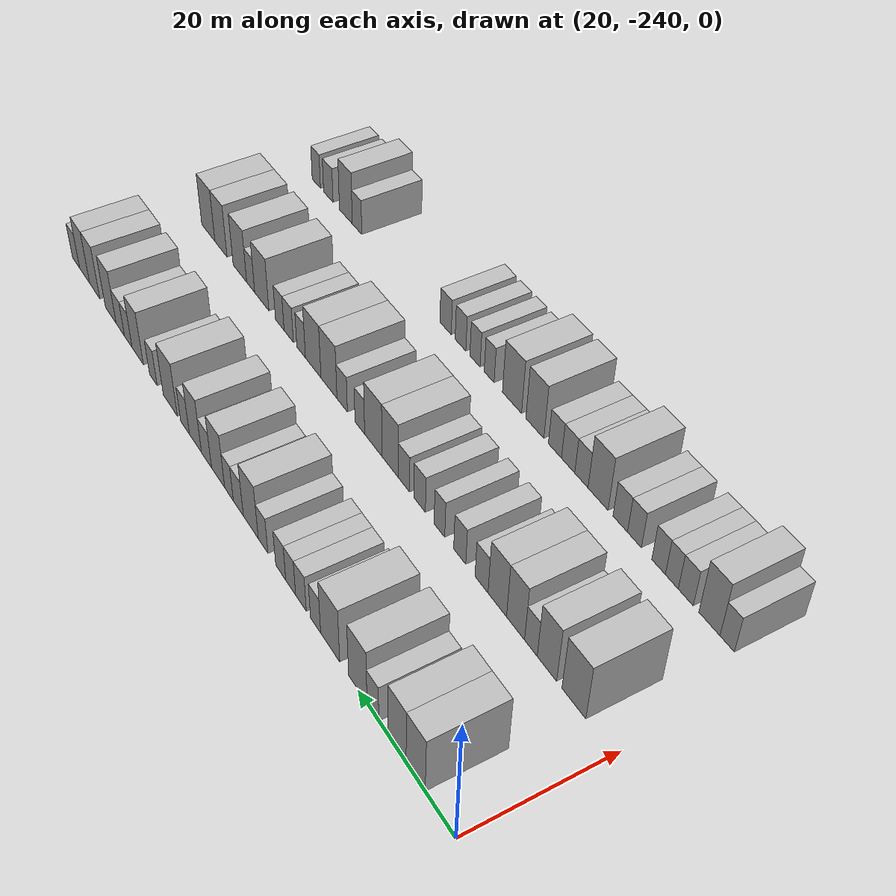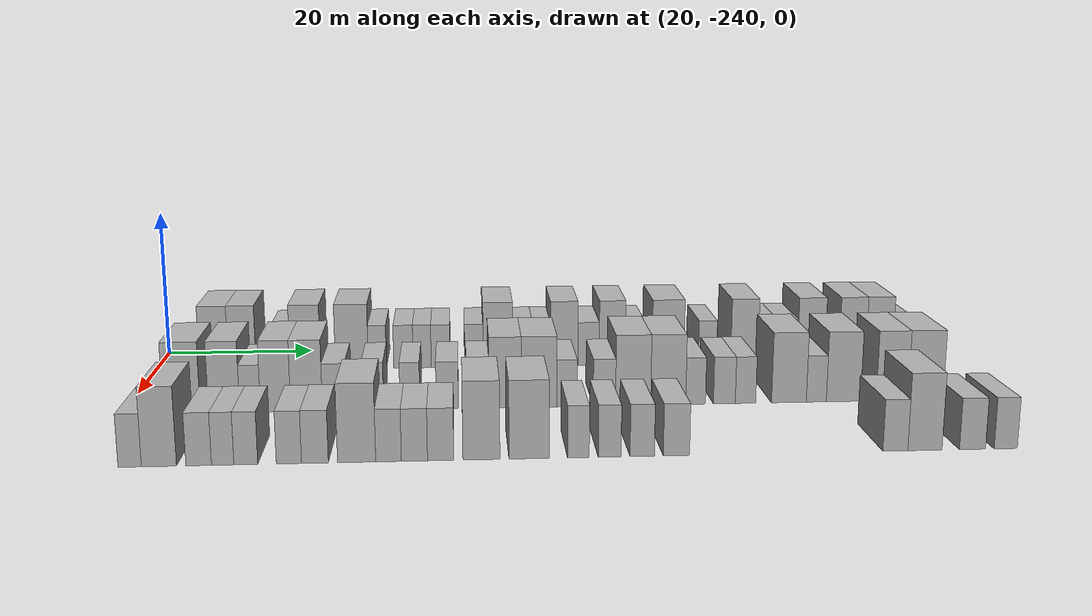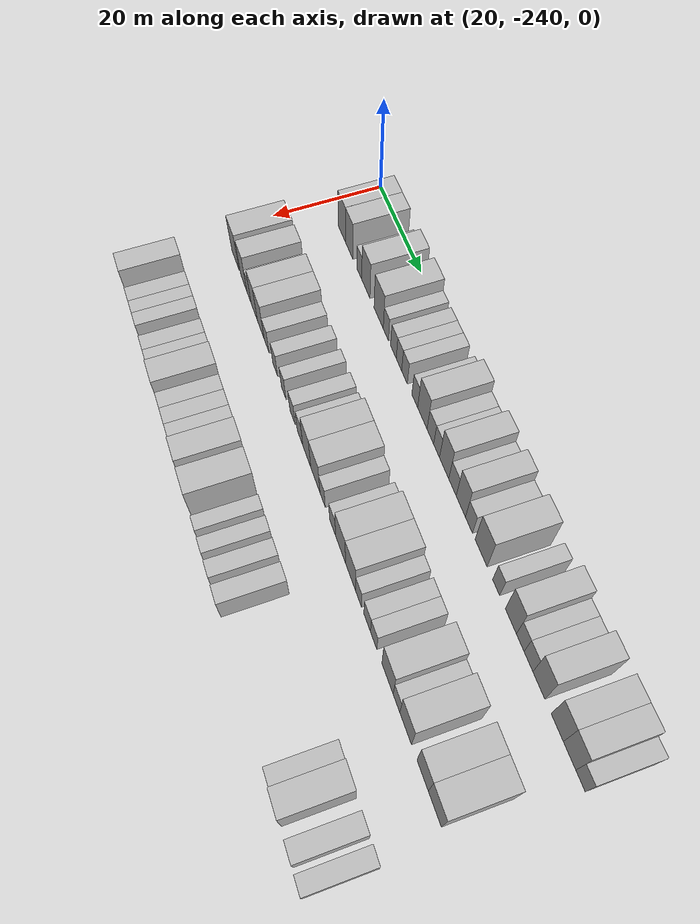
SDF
<sdf version="1.6">
 <world name="default">
  <model name="building_1">
   <static>1</static>
   <pose>25.0000 -232.0690 0 0.000000 0.000000 0.000000</pose>
   <link name="link">
    <pose>0 0 4.50 0 0 0</pose>
    <collision name="collision"><geometry><box><size>10.0000 3.8621 9.0000</size></box></geometry></collision>
    <visual name="visual">
     <cast_shadows>0</cast_shadows>
     <geometry><box><size>10.0000 3.8621 9.0000</size></box></geometry>
     <material>
      <script>
       <uri>model://HANNAS_wall/materials/scripts</uri>
       <uri>model://HANNAS_wall/materials/textures</uri>
       <name>vrc/HANNAS_wall</name>
      </script>
     </material>
    </visual>
   </link>
  </model>
  <model name="building_2">
   <static>1</static>
   <pose>25.0000 -228.2816 0 0.000000 0.000000 0.000000</pose>
   <link name="link">
    <pose>0 0 4.50 0 0 0</pose>
    <collision name="collision"><geometry><box><size>10.0000 3.7126 9.0000</size></box></geometry></collision>
    <visual name="visual">
     <cast_shadows>0</cast_shadows>
     <geometry><box><size>10.0000 3.7126 9.0000</size></box></geometry>
     <material>
      <script>
       <uri>model://HANNAS_wall/materials/scripts</uri>
       <uri>model://HANNAS_wall/materials/textures</uri>
       <name>vrc/HANNAS_wall</name>
      </script>
     </material>
    </visual>
   </link>
  </model>
  <model name="building_3">
   <static>1</static>
   <pose>25.0000 -223.1535 0 0.000000 0.000000 0.000000</pose>
   <link name="link">
    <pose>0 0 3.00 0 0 0</pose>
    <collision name="collision"><geometry><box><size>10.0000 2.5438 6.0000</size></box></geometry></collision>
    <visual name="visual">
     <cast_shadows>0</cast_shadows>
     <geometry><box><size>10.0000 2.5438 6.0000</size></box></geometry>
     <material>
      <script>
       <uri>model://HANNAS_wall/materials/scripts</uri>
       <uri>model://HANNAS_wall/materials/textures</uri>
       <name>vrc/HANNAS_wall</name>
      </script>
     </material>
    </visual>
   </link>
  </model>
  <model name="building_4">
   <static>1</static>
   <pose>25.0000 -219.8326 0 0.000000 0.000000 0.000000</pose>
   <link name="link">
    <pose>0 0 4.50 0 0 0</pose>
    <collision name="collision"><geometry><box><size>10.0000 4.0980 9.0000</size></box></geometry></collision>
    <visual name="visual">
     <cast_shadows>0</cast_shadows>
     <geometry><box><size>10.0000 4.0980 9.0000</size></box></geometry>
     <material>
      <script>
       <uri>model://HANNAS_wall/materials/scripts</uri>
       <uri>model://HANNAS_wall/materials/textures</uri>
       <name>vrc/HANNAS_wall</name>
      </script>
     </material>
    </visual>
   </link>
  </model>
  <model name="building_5">
   <static>1</static>
   <pose>25.0000 -213.5639 0 0.000000 0.000000 0.000000</pose>
   <link name="link">
    <pose>0 0 4.50 0 0 0</pose>
    <collision name="collision"><geometry><box><size>10.0000 4.4393 9.0000</size></box></geometry></collision>
    <visual name="visual">
     <cast_shadows>0</cast_shadows>
     <geometry><box><size>10.0000 4.4393 9.0000</size></box></geometry>
     <material>
      <script>
       <uri>model://HANNAS_wall/materials/scripts</uri>
       <uri>model://HANNAS_wall/materials/textures</uri>
       <name>vrc/HANNAS_wall</name>
      </script>
     </material>
    </visual>
   </link>
  </model>
  <model name="building_6">
   <static>1</static>
   <pose>25.0000 -210.1234 0 0.000000 0.000000 0.000000</pose>
   <link name="link">
    <pose>0 0 3.00 0 0 0</pose>
    <collision name="collision"><geometry><box><size>10.0000 2.4418 6.0000</size></box></geometry></collision>
    <visual name="visual">
     <cast_shadows>0</cast_shadows>
     <geometry><box><size>10.0000 2.4418 6.0000</size></box></geometry>
     <material>
      <script>
       <uri>model://HANNAS_wall/materials/scripts</uri>
       <uri>model://HANNAS_wall/materials/textures</uri>
       <name>vrc/HANNAS_wall</name>
      </script>
     </material>
    </visual>
   </link>
  </model>
  <model name="building_7">
   <static>1</static>
   <pose>25.0000 -206.5913 0 0.000000 0.000000 0.000000</pose>
   <link name="link">
    <pose>0 0 3.00 0 0 0</pose>
    <collision name="collision"><geometry><box><size>10.0000 2.6224 6.0000</size></box></geometry></collision>
    <visual name="visual">
     <cast_shadows>0</cast_shadows>
     <geometry><box><size>10.0000 2.6224 6.0000</size></box></geometry>
     <material>
      <script>
       <uri>model://HANNAS_wall/materials/scripts</uri>
       <uri>model://HANNAS_wall/materials/textures</uri>
       <name>vrc/HANNAS_wall</name>
      </script>
     </material>
    </visual>
   </link>
  </model>
  <model name="building_8">
   <static>1</static>
   <pose>25.0000 -204.0491 0 0.000000 0.000000 0.000000</pose>
   <link name="link">
    <pose>0 0 3.00 0 0 0</pose>
    <collision name="collision"><geometry><box><size>10.0000 2.4620 6.0000</size></box></geometry></collision>
    <visual name="visual">
     <cast_shadows>0</cast_shadows>
     <geometry><box><size>10.0000 2.4620 6.0000</size></box></geometry>
     <material>
      <script>
       <uri>model://HANNAS_wall/materials/scripts</uri>
       <uri>model://HANNAS_wall/materials/textures</uri>
       <name>vrc/HANNAS_wall</name>
      </script>
     </material>
    </visual>
   </link>
  </model>
  <model name="building_9">
   <static>1</static>
   <pose>25.0000 -201.5387 0 0.000000 0.000000 0.000000</pose>
   <link name="link">
    <pose>0 0 3.00 0 0 0</pose>
    <collision name="collision"><geometry><box><size>10.0000 2.5589 6.0000</size></box></geometry></collision>
    <visual name="visual">
     <cast_shadows>0</cast_shadows>
     <geometry><box><size>10.0000 2.5589 6.0000</size></box></geometry>
     <material>
      <script>
       <uri>model://HANNAS_wall/materials/scripts</uri>
       <uri>model://HANNAS_wall/materials/textures</uri>
       <name>vrc/HANNAS_wall</name>
      </script>
     </material>
    </visual>
   </link>
  </model>
  <model name="building_10">
   <static>1</static>
   <pose>25.0000 -196.9926 0 0.000000 0.000000 0.000000</pose>
   <link name="link">
    <pose>0 0 3.00 0 0 0</pose>
    <collision name="collision"><geometry><box><size>10.0000 2.5333 6.0000</size></box></geometry></collision>
    <visual name="visual">
     <cast_shadows>0</cast_shadows>
     <geometry><box><size>10.0000 2.5333 6.0000</size></box></geometry>
     <material>
      <script>
       <uri>model://HANNAS_wall/materials/scripts</uri>
       <uri>model://HANNAS_wall/materials/textures</uri>
       <name>vrc/HANNAS_wall</name>
      </script>
     </material>
    </visual>
   </link>
  </model>
  <model name="building_11">
   <static>1</static>
   <pose>25.0000 -193.7096 0 0.000000 0.000000 0.000000</pose>
   <link name="link">
    <pose>0 0 4.50 0 0 0</pose>
    <collision name="collision"><geometry><box><size>10.0000 4.0325 9.0000</size></box></geometry></collision>
    <visual name="visual">
     <cast_shadows>0</cast_shadows>
     <geometry><box><size>10.0000 4.0325 9.0000</size></box></geometry>
     <material>
      <script>
       <uri>model://HANNAS_wall/materials/scripts</uri>
       <uri>model://HANNAS_wall/materials/textures</uri>
       <name>vrc/HANNAS_wall</name>
      </script>
     </material>
    </visual>
   </link>
  </model>
  <model name="building_12">
   <static>1</static>
   <pose>25.0000 -190.3162 0 0.000000 0.000000 0.000000</pose>
   <link name="link">
    <pose>0 0 3.00 0 0 0</pose>
    <collision name="collision"><geometry><box><size>10.0000 2.7544 6.0000</size></box></geometry></collision>
    <visual name="visual">
     <cast_shadows>0</cast_shadows>
     <geometry><box><size>10.0000 2.7544 6.0000</size></box></geometry>
     <material>
      <script>
       <uri>model://HANNAS_wall/materials/scripts</uri>
       <uri>model://HANNAS_wall/materials/textures</uri>
       <name>vrc/HANNAS_wall</name>
      </script>
     </material>
    </visual>
   </link>
  </model>
  <model name="building_13">
   <static>1</static>
   <pose>25.0000 -187.7275 0 0.000000 0.000000 0.000000</pose>
   <link name="link">
    <pose>0 0 3.00 0 0 0</pose>
    <collision name="collision"><geometry><box><size>10.0000 2.4229 6.0000</size></box></geometry></collision>
    <visual name="visual">
     <cast_shadows>0</cast_shadows>
     <geometry><box><size>10.0000 2.4229 6.0000</size></box></geometry>
     <material>
      <script>
       <uri>model://HANNAS_wall/materials/scripts</uri>
       <uri>model://HANNAS_wall/materials/textures</uri>
       <name>vrc/HANNAS_wall</name>
      </script>
     </material>
    </visual>
   </link>
  </model>
  <model name="building_14">
   <static>1</static>
   <pose>25.0000 -184.6353 0 0.000000 0.000000 0.000000</pose>
   <link name="link">
    <pose>0 0 4.50 0 0 0</pose>
    <collision name="collision"><geometry><box><size>10.0000 3.7617 9.0000</size></box></geometry></collision>
    <visual name="visual">
     <cast_shadows>0</cast_shadows>
     <geometry><box><size>10.0000 3.7617 9.0000</size></box></geometry>
     <material>
      <script>
       <uri>model://HANNAS_wall/materials/scripts</uri>
       <uri>model://HANNAS_wall/materials/textures</uri>
       <name>vrc/HANNAS_wall</name>
      </script>
     </material>
    </visual>
   </link>
  </model>
  <model name="building_15">
   <static>1</static>
   <pose>25.0000 -181.2803 0 0.000000 0.000000 0.000000</pose>
   <link name="link">
    <pose>0 0 3.00 0 0 0</pose>
    <collision name="collision"><geometry><box><size>10.0000 2.9483 6.0000</size></box></geometry></collision>
    <visual name="visual">
     <cast_shadows>0</cast_shadows>
     <geometry><box><size>10.0000 2.9483 6.0000</size></box></geometry>
     <material>
      <script>
       <uri>model://HANNAS_wall/materials/scripts</uri>
       <uri>model://HANNAS_wall/materials/textures</uri>
       <name>vrc/HANNAS_wall</name>
      </script>
     </material>
    </visual>
   </link>
  </model>
  <model name="building_16">
   <static>1</static>
   <pose>25.0000 -177.9995 0 0.000000 0.000000 0.000000</pose>
   <link name="link">
    <pose>0 0 4.50 0 0 0</pose>
    <collision name="collision"><geometry><box><size>10.0000 3.6132 9.0000</size></box></geometry></collision>
    <visual name="visual">
     <cast_shadows>0</cast_shadows>
     <geometry><box><size>10.0000 3.6132 9.0000</size></box></geometry>
     <material>
      <script>
       <uri>model://HANNAS_wall/materials/scripts</uri>
       <uri>model://HANNAS_wall/materials/textures</uri>
       <name>vrc/HANNAS_wall</name>
      </script>
     </material>
    </visual>
   </link>
  </model>
  <model name="building_17">
   <static>1</static>
   <pose>25.0000 -174.8447 0 0.000000 0.000000 0.000000</pose>
   <link name="link">
    <pose>0 0 3.00 0 0 0</pose>
    <collision name="collision"><geometry><box><size>10.0000 2.6965 6.0000</size></box></geometry></collision>
    <visual name="visual">
     <cast_shadows>0</cast_shadows>
     <geometry><box><size>10.0000 2.6965 6.0000</size></box></geometry>
     <material>
      <script>
       <uri>model://HANNAS_wall/materials/scripts</uri>
       <uri>model://HANNAS_wall/materials/textures</uri>
       <name>vrc/HANNAS_wall</name>
      </script>
     </material>
    </visual>
   </link>
  </model>
  <model name="building_18">
   <static>1</static>
   <pose>25.0000 -170.2805 0 0.000000 0.000000 0.000000</pose>
   <link name="link">
    <pose>0 0 4.50 0 0 0</pose>
    <collision name="collision"><geometry><box><size>10.0000 4.4319 9.0000</size></box></geometry></collision>
    <visual name="visual">
     <cast_shadows>0</cast_shadows>
     <geometry><box><size>10.0000 4.4319 9.0000</size></box></geometry>
     <material>
      <script>
       <uri>model://HANNAS_wall/materials/scripts</uri>
       <uri>model://HANNAS_wall/materials/textures</uri>
       <name>vrc/HANNAS_wall</name>
      </script>
     </material>
    </visual>
   </link>
  </model>
  <model name="building_19">
   <static>1</static>
   <pose>25.0000 -164.8110 0 0.000000 0.000000 0.000000</pose>
   <link name="link">
    <pose>0 0 3.00 0 0 0</pose>
    <collision name="collision"><geometry><box><size>10.0000 2.5070 6.0000</size></box></geometry></collision>
    <visual name="visual">
     <cast_shadows>0</cast_shadows>
     <geometry><box><size>10.0000 2.5070 6.0000</size></box></geometry>
     <material>
      <script>
       <uri>model://HANNAS_wall/materials/scripts</uri>
       <uri>model://HANNAS_wall/materials/textures</uri>
       <name>vrc/HANNAS_wall</name>
      </script>
     </material>
    </visual>
   </link>
  </model>
  <model name="building_20">
   <static>1</static>
   <pose>25.0000 -159.6483 0 0.000000 0.000000 0.000000</pose>
   <link name="link">
    <pose>0 0 4.50 0 0 0</pose>
    <collision name="collision"><geometry><box><size>10.0000 3.8185 9.0000</size></box></geometry></collision>
    <visual name="visual">
     <cast_shadows>0</cast_shadows>
     <geometry><box><size>10.0000 3.8185 9.0000</size></box></geometry>
     <material>
      <script>
       <uri>model://HANNAS_wall/materials/scripts</uri>
       <uri>model://HANNAS_wall/materials/textures</uri>
       <name>vrc/HANNAS_wall</name>
      </script>
     </material>
    </visual>
   </link>
  </model>
  <model name="building_21">
   <static>1</static>
   <pose>25.0000 -156.4367 0 0.000000 0.000000 0.000000</pose>
   <link name="link">
    <pose>0 0 3.00 0 0 0</pose>
    <collision name="collision"><geometry><box><size>10.0000 2.6046 6.0000</size></box></geometry></collision>
    <visual name="visual">
     <cast_shadows>0</cast_shadows>
     <geometry><box><size>10.0000 2.6046 6.0000</size></box></geometry>
     <material>
      <script>
       <uri>model://HANNAS_wall/materials/scripts</uri>
       <uri>model://HANNAS_wall/materials/textures</uri>
       <name>vrc/HANNAS_wall</name>
      </script>
     </material>
    </visual>
   </link>
  </model>
  <model name="building_22">
   <static>1</static>
   <pose>25.0000 -153.6787 0 0.000000 0.000000 0.000000</pose>
   <link name="link">
    <pose>0 0 3.00 0 0 0</pose>
    <collision name="collision"><geometry><box><size>10.0000 2.9116 6.0000</size></box></geometry></collision>
    <visual name="visual">
     <cast_shadows>0</cast_shadows>
     <geometry><box><size>10.0000 2.9116 6.0000</size></box></geometry>
     <material>
      <script>
       <uri>model://HANNAS_wall/materials/scripts</uri>
       <uri>model://HANNAS_wall/materials/textures</uri>
       <name>vrc/HANNAS_wall</name>
      </script>
     </material>
    </visual>
   </link>
  </model>
  <model name="building_23">
   <static>1</static>
   <pose>25.0000 -150.2912 0 0.000000 0.000000 0.000000</pose>
   <link name="link">
    <pose>0 0 4.50 0 0 0</pose>
    <collision name="collision"><geometry><box><size>10.0000 3.8634 9.0000</size></box></geometry></collision>
    <visual name="visual">
     <cast_shadows>0</cast_shadows>
     <geometry><box><size>10.0000 3.8634 9.0000</size></box></geometry>
     <material>
      <script>
       <uri>model://HANNAS_wall/materials/scripts</uri>
       <uri>model://HANNAS_wall/materials/textures</uri>
       <name>vrc/HANNAS_wall</name>
      </script>
     </material>
    </visual>
   </link>
  </model>
  <model name="building_24">
   <static>1</static>
   <pose>25.0000 -144.4624 0 0.000000 0.000000 0.000000</pose>
   <link name="link">
    <pose>0 0 4.50 0 0 0</pose>
    <collision name="collision"><geometry><box><size>10.0000 3.7941 9.0000</size></box></geometry></collision>
    <visual name="visual">
     <cast_shadows>0</cast_shadows>
     <geometry><box><size>10.0000 3.7941 9.0000</size></box></geometry>
     <material>
      <script>
       <uri>model://HANNAS_wall/materials/scripts</uri>
       <uri>model://HANNAS_wall/materials/textures</uri>
       <name>vrc/HANNAS_wall</name>
      </script>
     </material>
    </visual>
   </link>
  </model>
  <model name="building_25">
   <static>1</static>
   <pose>25.0000 -140.6812 0 0.000000 0.000000 0.000000</pose>
   <link name="link">
    <pose>0 0 4.50 0 0 0</pose>
    <collision name="collision"><geometry><box><size>10.0000 3.7682 9.0000</size></box></geometry></collision>
    <visual name="visual">
     <cast_shadows>0</cast_shadows>
     <geometry><box><size>10.0000 3.7682 9.0000</size></box></geometry>
     <material>
      <script>
       <uri>model://HANNAS_wall/materials/scripts</uri>
       <uri>model://HANNAS_wall/materials/textures</uri>
       <name>vrc/HANNAS_wall</name>
      </script>
     </material>
    </visual>
   </link>
  </model>
  <model name="building_26">
   <static>1</static>
   <pose>25.0000 -137.3999 0 0.000000 0.000000 0.000000</pose>
   <link name="link">
    <pose>0 0 3.00 0 0 0</pose>
    <collision name="collision"><geometry><box><size>10.0000 2.7946 6.0000</size></box></geometry></collision>
    <visual name="visual">
     <cast_shadows>0</cast_shadows>
     <geometry><box><size>10.0000 2.7946 6.0000</size></box></geometry>
     <material>
      <script>
       <uri>model://HANNAS_wall/materials/scripts</uri>
       <uri>model://HANNAS_wall/materials/textures</uri>
       <name>vrc/HANNAS_wall</name>
      </script>
     </material>
    </visual>
   </link>
  </model>
  <model name="building_121">
   <static>1</static>
   <pose>44.0000 -232.7772 0 0.000000 0.000000 0.000000</pose>
   <link name="link">
    <pose>0 0 4.50 0 0 0</pose>
    <collision name="collision"><geometry><box><size>10.0000 4.4457 9.0000</size></box></geometry></collision>
    <visual name="visual">
     <cast_shadows>0</cast_shadows>
     <geometry><box><size>10.0000 4.4457 9.0000</size></box></geometry>
     <material>
      <script>
       <uri>model://HANNAS_wall/materials/scripts</uri>
       <uri>model://HANNAS_wall/materials/textures</uri>
       <name>vrc/HANNAS_wall</name>
      </script>
     </material>
    </visual>
   </link>
  </model>
  <model name="building_122">
   <static>1</static>
   <pose>44.0000 -227.6763 0 0.000000 0.000000 0.000000</pose>
   <link name="link">
    <pose>0 0 4.50 0 0 0</pose>
    <collision name="collision"><geometry><box><size>10.0000 3.7561 9.0000</size></box></geometry></collision>
    <visual name="visual">
     <cast_shadows>0</cast_shadows>
     <geometry><box><size>10.0000 3.7561 9.0000</size></box></geometry>
     <material>
      <script>
       <uri>model://HANNAS_wall/materials/scripts</uri>
       <uri>model://HANNAS_wall/materials/textures</uri>
       <name>vrc/HANNAS_wall</name>
      </script>
     </material>
    </visual>
   </link>
  </model>
  <model name="building_123">
   <static>1</static>
   <pose>44.0000 -224.5448 0 0.000000 0.000000 0.000000</pose>
   <link name="link">
    <pose>0 0 3.00 0 0 0</pose>
    <collision name="collision"><geometry><box><size>10.0000 2.5069 6.0000</size></box></geometry></collision>
    <visual name="visual">
     <cast_shadows>0</cast_shadows>
     <geometry><box><size>10.0000 2.5069 6.0000</size></box></geometry>
     <material>
      <script>
       <uri>model://HANNAS_wall/materials/scripts</uri>
       <uri>model://HANNAS_wall/materials/textures</uri>
       <name>vrc/HANNAS_wall</name>
      </script>
     </material>
    </visual>
   </link>
  </model>
  <model name="building_124">
   <static>1</static>
   <pose>44.0000 -221.4634 0 0.000000 0.000000 0.000000</pose>
   <link name="link">
    <pose>0 0 4.50 0 0 0</pose>
    <collision name="collision"><geometry><box><size>10.0000 3.6559 9.0000</size></box></geometry></collision>
    <visual name="visual">
     <cast_shadows>0</cast_shadows>
     <geometry><box><size>10.0000 3.6559 9.0000</size></box></geometry>
     <material>
      <script>
       <uri>model://HANNAS_wall/materials/scripts</uri>
       <uri>model://HANNAS_wall/materials/textures</uri>
       <name>vrc/HANNAS_wall</name>
      </script>
     </material>
    </visual>
   </link>
  </model>
  <model name="building_125">
   <static>1</static>
   <pose>44.0000 -217.7077 0 0.000000 0.000000 0.000000</pose>
   <link name="link">
    <pose>0 0 4.50 0 0 0</pose>
    <collision name="collision"><geometry><box><size>10.0000 3.8555 9.0000</size></box></geometry></collision>
    <visual name="visual">
     <cast_shadows>0</cast_shadows>
     <geometry><box><size>10.0000 3.8555 9.0000</size></box></geometry>
     <material>
      <script>
       <uri>model://HANNAS_wall/materials/scripts</uri>
       <uri>model://HANNAS_wall/materials/textures</uri>
       <name>vrc/HANNAS_wall</name>
      </script>
     </material>
    </visual>
   </link>
  </model>
  <model name="building_126">
   <static>1</static>
   <pose>44.0000 -214.3912 0 0.000000 0.000000 0.000000</pose>
   <link name="link">
    <pose>0 0 3.00 0 0 0</pose>
    <collision name="collision"><geometry><box><size>10.0000 2.7776 6.0000</size></box></geometry></collision>
    <visual name="visual">
     <cast_shadows>0</cast_shadows>
     <geometry><box><size>10.0000 2.7776 6.0000</size></box></geometry>
     <material>
      <script>
       <uri>model://HANNAS_wall/materials/scripts</uri>
       <uri>model://HANNAS_wall/materials/textures</uri>
       <name>vrc/HANNAS_wall</name>
      </script>
     </material>
    </visual>
   </link>
  </model>
  <model name="building_127">
   <static>1</static>
   <pose>44.0000 -209.6615 0 0.000000 0.000000 0.000000</pose>
   <link name="link">
    <pose>0 0 3.00 0 0 0</pose>
    <collision name="collision"><geometry><box><size>10.0000 2.6817 6.0000</size></box></geometry></collision>
    <visual name="visual">
     <cast_shadows>0</cast_shadows>
     <geometry><box><size>10.0000 2.6817 6.0000</size></box></geometry>
     <material>
      <script>
       <uri>model://HANNAS_wall/materials/scripts</uri>
       <uri>model://HANNAS_wall/materials/textures</uri>
       <name>vrc/HANNAS_wall</name>
      </script>
     </material>
    </visual>
   </link>
  </model>
  <model name="building_128">
   <static>1</static>
   <pose>44.0000 -205.1039 0 0.000000 0.000000 0.000000</pose>
   <link name="link">
    <pose>0 0 3.00 0 0 0</pose>
    <collision name="collision"><geometry><box><size>10.0000 2.4336 6.0000</size></box></geometry></collision>
    <visual name="visual">
     <cast_shadows>0</cast_shadows>
     <geometry><box><size>10.0000 2.4336 6.0000</size></box></geometry>
     <material>
      <script>
       <uri>model://HANNAS_wall/materials/scripts</uri>
       <uri>model://HANNAS_wall/materials/textures</uri>
       <name>vrc/HANNAS_wall</name>
      </script>
     </material>
    </visual>
   </link>
  </model>
  <model name="building_129">
   <static>1</static>
   <pose>44.0000 -200.5184 0 0.000000 0.000000 0.000000</pose>
   <link name="link">
    <pose>0 0 3.00 0 0 0</pose>
    <collision name="collision"><geometry><box><size>10.0000 2.7373 6.0000</size></box></geometry></collision>
    <visual name="visual">
     <cast_shadows>0</cast_shadows>
     <geometry><box><size>10.0000 2.7373 6.0000</size></box></geometry>
     <material>
      <script>
       <uri>model://HANNAS_wall/materials/scripts</uri>
       <uri>model://HANNAS_wall/materials/textures</uri>
       <name>vrc/HANNAS_wall</name>
      </script>
     </material>
    </visual>
   </link>
  </model>
  <model name="building_130">
   <static>1</static>
   <pose>44.0000 -196.7540 0 0.000000 0.000000 0.000000</pose>
   <link name="link">
    <pose>0 0 3.00 0 0 0</pose>
    <collision name="collision"><geometry><box><size>10.0000 2.7914 6.0000</size></box></geometry></collision>
    <visual name="visual">
     <cast_shadows>0</cast_shadows>
     <geometry><box><size>10.0000 2.7914 6.0000</size></box></geometry>
     <material>
      <script>
       <uri>model://HANNAS_wall/materials/scripts</uri>
       <uri>model://HANNAS_wall/materials/textures</uri>
       <name>vrc/HANNAS_wall</name>
      </script>
     </material>
    </visual>
   </link>
  </model>
  <model name="building_131">
   <static>1</static>
   <pose>44.0000 -193.3710 0 0.000000 0.000000 0.000000</pose>
   <link name="link">
    <pose>0 0 4.50 0 0 0</pose>
    <collision name="collision"><geometry><box><size>10.0000 3.9745 9.0000</size></box></geometry></collision>
    <visual name="visual">
     <cast_shadows>0</cast_shadows>
     <geometry><box><size>10.0000 3.9745 9.0000</size></box></geometry>
     <material>
      <script>
       <uri>model://HANNAS_wall/materials/scripts</uri>
       <uri>model://HANNAS_wall/materials/textures</uri>
       <name>vrc/HANNAS_wall</name>
      </script>
     </material>
    </visual>
   </link>
  </model>
  <model name="building_132">
   <static>1</static>
   <pose>44.0000 -189.1807 0 0.000000 0.000000 0.000000</pose>
   <link name="link">
    <pose>0 0 4.50 0 0 0</pose>
    <collision name="collision"><geometry><box><size>10.0000 4.4062 9.0000</size></box></geometry></collision>
    <visual name="visual">
     <cast_shadows>0</cast_shadows>
     <geometry><box><size>10.0000 4.4062 9.0000</size></box></geometry>
     <material>
      <script>
       <uri>model://HANNAS_wall/materials/scripts</uri>
       <uri>model://HANNAS_wall/materials/textures</uri>
       <name>vrc/HANNAS_wall</name>
      </script>
     </material>
    </visual>
   </link>
  </model>
  <model name="building_133">
   <static>1</static>
   <pose>44.0000 -185.7260 0 0.000000 0.000000 0.000000</pose>
   <link name="link">
    <pose>0 0 3.00 0 0 0</pose>
    <collision name="collision"><geometry><box><size>10.0000 2.5032 6.0000</size></box></geometry></collision>
    <visual name="visual">
     <cast_shadows>0</cast_shadows>
     <geometry><box><size>10.0000 2.5032 6.0000</size></box></geometry>
     <material>
      <script>
       <uri>model://HANNAS_wall/materials/scripts</uri>
       <uri>model://HANNAS_wall/materials/textures</uri>
       <name>vrc/HANNAS_wall</name>
      </script>
     </material>
    </visual>
   </link>
  </model>
  <model name="building_134">
   <static>1</static>
   <pose>44.0000 -181.0792 0 0.000000 0.000000 0.000000</pose>
   <link name="link">
    <pose>0 0 3.00 0 0 0</pose>
    <collision name="collision"><geometry><box><size>10.0000 2.7903 6.0000</size></box></geometry></collision>
    <visual name="visual">
     <cast_shadows>0</cast_shadows>
     <geometry><box><size>10.0000 2.7903 6.0000</size></box></geometry>
     <material>
      <script>
       <uri>model://HANNAS_wall/materials/scripts</uri>
       <uri>model://HANNAS_wall/materials/textures</uri>
       <name>vrc/HANNAS_wall</name>
      </script>
     </material>
    </visual>
   </link>
  </model>
  <model name="building_135">
   <static>1</static>
   <pose>44.0000 -177.4917 0 0.000000 0.000000 0.000000</pose>
   <link name="link">
    <pose>0 0 4.50 0 0 0</pose>
    <collision name="collision"><geometry><box><size>10.0000 4.3847 9.0000</size></box></geometry></collision>
    <visual name="visual">
     <cast_shadows>0</cast_shadows>
     <geometry><box><size>10.0000 4.3847 9.0000</size></box></geometry>
     <material>
      <script>
       <uri>model://HANNAS_wall/materials/scripts</uri>
       <uri>model://HANNAS_wall/materials/textures</uri>
       <name>vrc/HANNAS_wall</name>
      </script>
     </material>
    </visual>
   </link>
  </model>
  <model name="building_136">
   <static>1</static>
   <pose>44.0000 -173.1068 0 0.000000 0.000000 0.000000</pose>
   <link name="link">
    <pose>0 0 4.50 0 0 0</pose>
    <collision name="collision"><geometry><box><size>10.0000 4.3852 9.0000</size></box></geometry></collision>
    <visual name="visual">
     <cast_shadows>0</cast_shadows>
     <geometry><box><size>10.0000 4.3852 9.0000</size></box></geometry>
     <material>
      <script>
       <uri>model://HANNAS_wall/materials/scripts</uri>
       <uri>model://HANNAS_wall/materials/textures</uri>
       <name>vrc/HANNAS_wall</name>
      </script>
     </material>
    </visual>
   </link>
  </model>
  <model name="building_137">
   <static>1</static>
   <pose>44.0000 -169.6720 0 0.000000 0.000000 0.000000</pose>
   <link name="link">
    <pose>0 0 3.00 0 0 0</pose>
    <collision name="collision"><geometry><box><size>10.0000 2.4843 6.0000</size></box></geometry></collision>
    <visual name="visual">
     <cast_shadows>0</cast_shadows>
     <geometry><box><size>10.0000 2.4843 6.0000</size></box></geometry>
     <material>
      <script>
       <uri>model://HANNAS_wall/materials/scripts</uri>
       <uri>model://HANNAS_wall/materials/textures</uri>
       <name>vrc/HANNAS_wall</name>
      </script>
     </material>
    </visual>
   </link>
  </model>
  <model name="building_138">
   <static>1</static>
   <pose>44.0000 -166.0549 0 0.000000 0.000000 0.000000</pose>
   <link name="link">
    <pose>0 0 3.00 0 0 0</pose>
    <collision name="collision"><geometry><box><size>10.0000 2.7499 6.0000</size></box></geometry></collision>
    <visual name="visual">
     <cast_shadows>0</cast_shadows>
     <geometry><box><size>10.0000 2.7499 6.0000</size></box></geometry>
     <material>
      <script>
       <uri>model://HANNAS_wall/materials/scripts</uri>
       <uri>model://HANNAS_wall/materials/textures</uri>
       <name>vrc/HANNAS_wall</name>
      </script>
     </material>
    </visual>
   </link>
  </model>
  <model name="building_139">
   <static>1</static>
   <pose>44.0000 -163.3880 0 0.000000 0.000000 0.000000</pose>
   <link name="link">
    <pose>0 0 3.00 0 0 0</pose>
    <collision name="collision"><geometry><box><size>10.0000 2.5840 6.0000</size></box></geometry></collision>
    <visual name="visual">
     <cast_shadows>0</cast_shadows>
     <geometry><box><size>10.0000 2.5840 6.0000</size></box></geometry>
     <material>
      <script>
       <uri>model://HANNAS_wall/materials/scripts</uri>
       <uri>model://HANNAS_wall/materials/textures</uri>
       <name>vrc/HANNAS_wall</name>
      </script>
     </material>
    </visual>
   </link>
  </model>
  <model name="building_140">
   <static>1</static>
   <pose>44.0000 -157.8936 0 0.000000 0.000000 0.000000</pose>
   <link name="link">
    <pose>0 0 4.50 0 0 0</pose>
    <collision name="collision"><geometry><box><size>10.0000 4.4047 9.0000</size></box></geometry></collision>
    <visual name="visual">
     <cast_shadows>0</cast_shadows>
     <geometry><box><size>10.0000 4.4047 9.0000</size></box></geometry>
     <material>
      <script>
       <uri>model://HANNAS_wall/materials/scripts</uri>
       <uri>model://HANNAS_wall/materials/textures</uri>
       <name>vrc/HANNAS_wall</name>
      </script>
     </material>
    </visual>
   </link>
  </model>
  <model name="building_141">
   <static>1</static>
   <pose>44.0000 -154.4190 0 0.000000 0.000000 0.000000</pose>
   <link name="link">
    <pose>0 0 3.00 0 0 0</pose>
    <collision name="collision"><geometry><box><size>10.0000 2.5446 6.0000</size></box></geometry></collision>
    <visual name="visual">
     <cast_shadows>0</cast_shadows>
     <geometry><box><size>10.0000 2.5446 6.0000</size></box></geometry>
     <material>
      <script>
       <uri>model://HANNAS_wall/materials/scripts</uri>
       <uri>model://HANNAS_wall/materials/textures</uri>
       <name>vrc/HANNAS_wall</name>
      </script>
     </material>
    </visual>
   </link>
  </model>
  <model name="building_142">
   <static>1</static>
   <pose>44.0000 -150.9679 0 0.000000 0.000000 0.000000</pose>
   <link name="link">
    <pose>0 0 4.50 0 0 0</pose>
    <collision name="collision"><geometry><box><size>10.0000 4.3574 9.0000</size></box></geometry></collision>
    <visual name="visual">
     <cast_shadows>0</cast_shadows>
     <geometry><box><size>10.0000 4.3574 9.0000</size></box></geometry>
     <material>
      <script>
       <uri>model://HANNAS_wall/materials/scripts</uri>
       <uri>model://HANNAS_wall/materials/textures</uri>
       <name>vrc/HANNAS_wall</name>
      </script>
     </material>
    </visual>
   </link>
  </model>
  <model name="building_143">
   <static>1</static>
   <pose>44.0000 -144.7563 0 0.000000 0.000000 0.000000</pose>
   <link name="link">
    <pose>0 0 4.50 0 0 0</pose>
    <collision name="collision"><geometry><box><size>10.0000 4.0659 9.0000</size></box></geometry></collision>
    <visual name="visual">
     <cast_shadows>0</cast_shadows>
     <geometry><box><size>10.0000 4.0659 9.0000</size></box></geometry>
     <material>
      <script>
       <uri>model://HANNAS_wall/materials/scripts</uri>
       <uri>model://HANNAS_wall/materials/textures</uri>
       <name>vrc/HANNAS_wall</name>
      </script>
     </material>
    </visual>
   </link>
  </model>
  <model name="building_144">
   <static>1</static>
   <pose>44.0000 -140.4753 0 0.000000 0.000000 0.000000</pose>
   <link name="link">
    <pose>0 0 4.50 0 0 0</pose>
    <collision name="collision"><geometry><box><size>10.0000 4.4962 9.0000</size></box></geometry></collision>
    <visual name="visual">
     <cast_shadows>0</cast_shadows>
     <geometry><box><size>10.0000 4.4962 9.0000</size></box></geometry>
     <material>
      <script>
       <uri>model://HANNAS_wall/materials/scripts</uri>
       <uri>model://HANNAS_wall/materials/textures</uri>
       <name>vrc/HANNAS_wall</name>
      </script>
     </material>
    </visual>
   </link>
  </model>
  <model name="building_241">
   <static>1</static>
   <pose>63.0000 -234.7487 0 0.000000 0.000000 0.000000</pose>
   <link name="link">
    <pose>0 0 3.00 0 0 0</pose>
    <collision name="collision"><geometry><box><size>10.0000 2.5027 6.0000</size></box></geometry></collision>
    <visual name="visual">
     <cast_shadows>0</cast_shadows>
     <geometry><box><size>10.0000 2.5027 6.0000</size></box></geometry>
     <material>
      <script>
       <uri>model://HANNAS_wall/materials/scripts</uri>
       <uri>model://HANNAS_wall/materials/textures</uri>
       <name>vrc/HANNAS_wall</name>
      </script>
     </material>
    </visual>
   </link>
  </model>
  <model name="building_242">
   <static>1</static>
   <pose>63.0000 -231.6223 0 0.000000 0.000000 0.000000</pose>
   <link name="link">
    <pose>0 0 4.50 0 0 0</pose>
    <collision name="collision"><geometry><box><size>10.0000 3.7501 9.0000</size></box></geometry></collision>
    <visual name="visual">
     <cast_shadows>0</cast_shadows>
     <geometry><box><size>10.0000 3.7501 9.0000</size></box></geometry>
     <material>
      <script>
       <uri>model://HANNAS_wall/materials/scripts</uri>
       <uri>model://HANNAS_wall/materials/textures</uri>
       <name>vrc/HANNAS_wall</name>
      </script>
     </material>
    </visual>
   </link>
  </model>
  <model name="building_243">
   <static>1</static>
   <pose>63.0000 -227.3729 0 0.000000 0.000000 0.000000</pose>
   <link name="link">
    <pose>0 0 3.00 0 0 0</pose>
    <collision name="collision"><geometry><box><size>10.0000 2.7486 6.0000</size></box></geometry></collision>
    <visual name="visual">
     <cast_shadows>0</cast_shadows>
     <geometry><box><size>10.0000 2.7486 6.0000</size></box></geometry>
     <material>
      <script>
       <uri>model://HANNAS_wall/materials/scripts</uri>
       <uri>model://HANNAS_wall/materials/textures</uri>
       <name>vrc/HANNAS_wall</name>
      </script>
     </material>
    </visual>
   </link>
  </model>
  <model name="building_244">
   <static>1</static>
   <pose>63.0000 -224.7949 0 0.000000 0.000000 0.000000</pose>
   <link name="link">
    <pose>0 0 3.00 0 0 0</pose>
    <collision name="collision"><geometry><box><size>10.0000 2.4075 6.0000</size></box></geometry></collision>
    <visual name="visual">
     <cast_shadows>0</cast_shadows>
     <geometry><box><size>10.0000 2.4075 6.0000</size></box></geometry>
     <material>
      <script>
       <uri>model://HANNAS_wall/materials/scripts</uri>
       <uri>model://HANNAS_wall/materials/textures</uri>
       <name>vrc/HANNAS_wall</name>
      </script>
     </material>
    </visual>
   </link>
  </model>
  <model name="building_245">
   <static>1</static>
   <pose>63.0000 -222.3055 0 0.000000 0.000000 0.000000</pose>
   <link name="link">
    <pose>0 0 3.00 0 0 0</pose>
    <collision name="collision"><geometry><box><size>10.0000 2.5711 6.0000</size></box></geometry></collision>
    <visual name="visual">
     <cast_shadows>0</cast_shadows>
     <geometry><box><size>10.0000 2.5711 6.0000</size></box></geometry>
     <material>
      <script>
       <uri>model://HANNAS_wall/materials/scripts</uri>
       <uri>model://HANNAS_wall/materials/textures</uri>
       <name>vrc/HANNAS_wall</name>
      </script>
     </material>
    </visual>
   </link>
  </model>
  <model name="building_246">
   <static>1</static>
   <pose>63.0000 -217.6536 0 0.000000 0.000000 0.000000</pose>
   <link name="link">
    <pose>0 0 3.00 0 0 0</pose>
    <collision name="collision"><geometry><box><size>10.0000 2.7328 6.0000</size></box></geometry></collision>
    <visual name="visual">
     <cast_shadows>0</cast_shadows>
     <geometry><box><size>10.0000 2.7328 6.0000</size></box></geometry>
     <material>
      <script>
       <uri>model://HANNAS_wall/materials/scripts</uri>
       <uri>model://HANNAS_wall/materials/textures</uri>
       <name>vrc/HANNAS_wall</name>
      </script>
     </material>
    </visual>
   </link>
  </model>
  <model name="building_247">
   <static>1</static>
   <pose>63.0000 -214.8381 0 0.000000 0.000000 0.000000</pose>
   <link name="link">
    <pose>0 0 3.00 0 0 0</pose>
    <collision name="collision"><geometry><box><size>10.0000 2.8983 6.0000</size></box></geometry></collision>
    <visual name="visual">
     <cast_shadows>0</cast_shadows>
     <geometry><box><size>10.0000 2.8983 6.0000</size></box></geometry>
     <material>
      <script>
       <uri>model://HANNAS_wall/materials/scripts</uri>
       <uri>model://HANNAS_wall/materials/textures</uri>
       <name>vrc/HANNAS_wall</name>
      </script>
     </material>
    </visual>
   </link>
  </model>
  <model name="building_248">
   <static>1</static>
   <pose>63.0000 -210.3157 0 0.000000 0.000000 0.000000</pose>
   <link name="link">
    <pose>0 0 4.50 0 0 0</pose>
    <collision name="collision"><geometry><box><size>10.0000 4.1465 9.0000</size></box></geometry></collision>
    <visual name="visual">
     <cast_shadows>0</cast_shadows>
     <geometry><box><size>10.0000 4.1465 9.0000</size></box></geometry>
     <material>
      <script>
       <uri>model://HANNAS_wall/materials/scripts</uri>
       <uri>model://HANNAS_wall/materials/textures</uri>
       <name>vrc/HANNAS_wall</name>
      </script>
     </material>
    </visual>
   </link>
  </model>
  <model name="building_249">
   <static>1</static>
   <pose>63.0000 -206.8430 0 0.000000 0.000000 0.000000</pose>
   <link name="link">
    <pose>0 0 3.00 0 0 0</pose>
    <collision name="collision"><geometry><box><size>10.0000 2.7989 6.0000</size></box></geometry></collision>
    <visual name="visual">
     <cast_shadows>0</cast_shadows>
     <geometry><box><size>10.0000 2.7989 6.0000</size></box></geometry>
     <material>
      <script>
       <uri>model://HANNAS_wall/materials/scripts</uri>
       <uri>model://HANNAS_wall/materials/textures</uri>
       <name>vrc/HANNAS_wall</name>
      </script>
     </material>
    </visual>
   </link>
  </model>
  <model name="building_250">
   <static>1</static>
   <pose>63.0000 -204.0147 0 0.000000 0.000000 0.000000</pose>
   <link name="link">
    <pose>0 0 3.00 0 0 0</pose>
    <collision name="collision"><geometry><box><size>10.0000 2.8575 6.0000</size></box></geometry></collision>
    <visual name="visual">
     <cast_shadows>0</cast_shadows>
     <geometry><box><size>10.0000 2.8575 6.0000</size></box></geometry>
     <material>
      <script>
       <uri>model://HANNAS_wall/materials/scripts</uri>
       <uri>model://HANNAS_wall/materials/textures</uri>
       <name>vrc/HANNAS_wall</name>
      </script>
     </material>
    </visual>
   </link>
  </model>
  <model name="building_251">
   <static>1</static>
   <pose>63.0000 -201.1468 0 0.000000 0.000000 0.000000</pose>
   <link name="link">
    <pose>0 0 3.00 0 0 0</pose>
    <collision name="collision"><geometry><box><size>10.0000 2.8783 6.0000</size></box></geometry></collision>
    <visual name="visual">
     <cast_shadows>0</cast_shadows>
     <geometry><box><size>10.0000 2.8783 6.0000</size></box></geometry>
     <material>
      <script>
       <uri>model://HANNAS_wall/materials/scripts</uri>
       <uri>model://HANNAS_wall/materials/textures</uri>
       <name>vrc/HANNAS_wall</name>
      </script>
     </material>
    </visual>
   </link>
  </model>
  <model name="building_252">
   <static>1</static>
   <pose>63.0000 -196.6725 0 0.000000 0.000000 0.000000</pose>
   <link name="link">
    <pose>0 0 4.50 0 0 0</pose>
    <collision name="collision"><geometry><box><size>10.0000 4.0705 9.0000</size></box></geometry></collision>
    <visual name="visual">
     <cast_shadows>0</cast_shadows>
     <geometry><box><size>10.0000 4.0705 9.0000</size></box></geometry>
     <material>
      <script>
       <uri>model://HANNAS_wall/materials/scripts</uri>
       <uri>model://HANNAS_wall/materials/textures</uri>
       <name>vrc/HANNAS_wall</name>
      </script>
     </material>
    </visual>
   </link>
  </model>
  <model name="building_253">
   <static>1</static>
   <pose>63.0000 -191.4041 0 0.000000 0.000000 0.000000</pose>
   <link name="link">
    <pose>0 0 4.50 0 0 0</pose>
    <collision name="collision"><geometry><box><size>10.0000 4.4662 9.0000</size></box></geometry></collision>
    <visual name="visual">
     <cast_shadows>0</cast_shadows>
     <geometry><box><size>10.0000 4.4662 9.0000</size></box></geometry>
     <material>
      <script>
       <uri>model://HANNAS_wall/materials/scripts</uri>
       <uri>model://HANNAS_wall/materials/textures</uri>
       <name>vrc/HANNAS_wall</name>
      </script>
     </material>
    </visual>
   </link>
  </model>
  <model name="building_254">
   <static>1</static>
   <pose>63.0000 -185.9652 0 0.000000 0.000000 0.000000</pose>
   <link name="link">
    <pose>0 0 3.00 0 0 0</pose>
    <collision name="collision"><geometry><box><size>10.0000 2.4118 6.0000</size></box></geometry></collision>
    <visual name="visual">
     <cast_shadows>0</cast_shadows>
     <geometry><box><size>10.0000 2.4118 6.0000</size></box></geometry>
     <material>
      <script>
       <uri>model://HANNAS_wall/materials/scripts</uri>
       <uri>model://HANNAS_wall/materials/textures</uri>
       <name>vrc/HANNAS_wall</name>
      </script>
     </material>
    </visual>
   </link>
  </model>
  <model name="building_255">
   <static>1</static>
   <pose>63.0000 -182.4925 0 0.000000 0.000000 0.000000</pose>
   <link name="link">
    <pose>0 0 3.00 0 0 0</pose>
    <collision name="collision"><geometry><box><size>10.0000 2.5335 6.0000</size></box></geometry></collision>
    <visual name="visual">
     <cast_shadows>0</cast_shadows>
     <geometry><box><size>10.0000 2.5335 6.0000</size></box></geometry>
     <material>
      <script>
       <uri>model://HANNAS_wall/materials/scripts</uri>
       <uri>model://HANNAS_wall/materials/textures</uri>
       <name>vrc/HANNAS_wall</name>
      </script>
     </material>
    </visual>
   </link>
  </model>
  <model name="building_256">
   <static>1</static>
   <pose>63.0000 -178.8670 0 0.000000 0.000000 0.000000</pose>
   <link name="link">
    <pose>0 0 3.00 0 0 0</pose>
    <collision name="collision"><geometry><box><size>10.0000 2.7176 6.0000</size></box></geometry></collision>
    <visual name="visual">
     <cast_shadows>0</cast_shadows>
     <geometry><box><size>10.0000 2.7176 6.0000</size></box></geometry>
     <material>
      <script>
       <uri>model://HANNAS_wall/materials/scripts</uri>
       <uri>model://HANNAS_wall/materials/textures</uri>
       <name>vrc/HANNAS_wall</name>
      </script>
     </material>
    </visual>
   </link>
  </model>
  <model name="building_257">
   <static>1</static>
   <pose>63.0000 -175.0441 0 0.000000 0.000000 0.000000</pose>
   <link name="link">
    <pose>0 0 3.00 0 0 0</pose>
    <collision name="collision"><geometry><box><size>10.0000 2.9282 6.0000</size></box></geometry></collision>
    <visual name="visual">
     <cast_shadows>0</cast_shadows>
     <geometry><box><size>10.0000 2.9282 6.0000</size></box></geometry>
     <material>
      <script>
       <uri>model://HANNAS_wall/materials/scripts</uri>
       <uri>model://HANNAS_wall/materials/textures</uri>
       <name>vrc/HANNAS_wall</name>
      </script>
     </material>
    </visual>
   </link>
  </model>
  <model name="building_258">
   <static>1</static>
   <pose>63.0000 -150.3169 0 0.000000 0.000000 0.000000</pose>
   <link name="link">
    <pose>0 0 3.00 0 0 0</pose>
    <collision name="collision"><geometry><box><size>10.0000 2.8421 6.0000</size></box></geometry></collision>
    <visual name="visual">
     <cast_shadows>0</cast_shadows>
     <geometry><box><size>10.0000 2.8421 6.0000</size></box></geometry>
     <material>
      <script>
       <uri>model://HANNAS_wall/materials/scripts</uri>
       <uri>model://HANNAS_wall/materials/textures</uri>
       <name>vrc/HANNAS_wall</name>
      </script>
     </material>
    </visual>
   </link>
  </model>
  <model name="building_259">
   <static>1</static>
   <pose>63.0000 -146.9384 0 0.000000 0.000000 0.000000</pose>
   <link name="link">
    <pose>0 0 4.50 0 0 0</pose>
    <collision name="collision"><geometry><box><size>10.0000 3.9150 9.0000</size></box></geometry></collision>
    <visual name="visual">
     <cast_shadows>0</cast_shadows>
     <geometry><box><size>10.0000 3.9150 9.0000</size></box></geometry>
     <material>
      <script>
       <uri>model://HANNAS_wall/materials/scripts</uri>
       <uri>model://HANNAS_wall/materials/textures</uri>
       <name>vrc/HANNAS_wall</name>
      </script>
     </material>
    </visual>
   </link>
  </model>
  <model name="building_260">
   <static>1</static>
   <pose>63.0000 -141.4873 0 0.000000 0.000000 0.000000</pose>
   <link name="link">
    <pose>0 0 3.00 0 0 0</pose>
    <collision name="collision"><geometry><box><size>10.0000 2.9872 6.0000</size></box></geometry></collision>
    <visual name="visual">
     <cast_shadows>0</cast_shadows>
     <geometry><box><size>10.0000 2.9872 6.0000</size></box></geometry>
     <material>
      <script>
       <uri>model://HANNAS_wall/materials/scripts</uri>
       <uri>model://HANNAS_wall/materials/textures</uri>
       <name>vrc/HANNAS_wall</name>
      </script>
     </material>
    </visual>
   </link>
  </model>
  <model name="building_261">
   <static>1</static>
   <pose>63.0000 -137.6628 0 0.000000 0.000000 0.000000</pose>
   <link name="link">
    <pose>0 0 3.00 0 0 0</pose>
    <collision name="collision"><geometry><box><size>10.0000 2.6617 6.0000</size></box></geometry></collision>
    <visual name="visual">
     <cast_shadows>0</cast_shadows>
     <geometry><box><size>10.0000 2.6617 6.0000</size></box></geometry>
     <material>
      <script>
       <uri>model://HANNAS_wall/materials/scripts</uri>
       <uri>model://HANNAS_wall/materials/textures</uri>
       <name>vrc/HANNAS_wall</name>
      </script>
     </material>
    </visual>
   </link>
  </model>
 </world>
</sdf>
